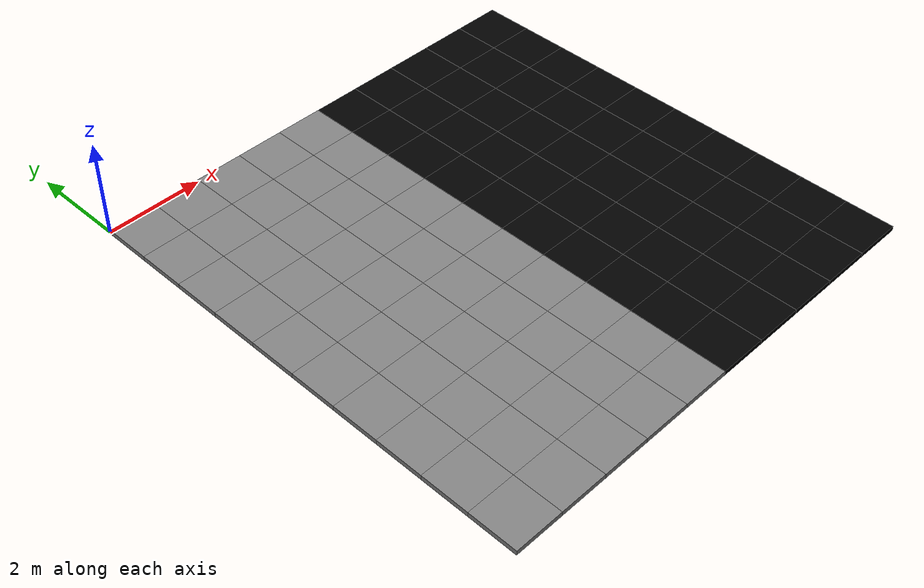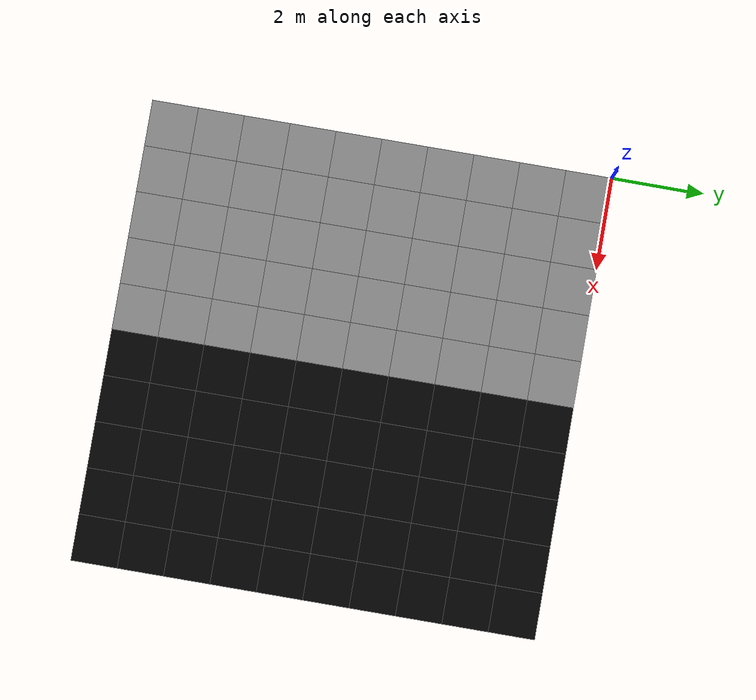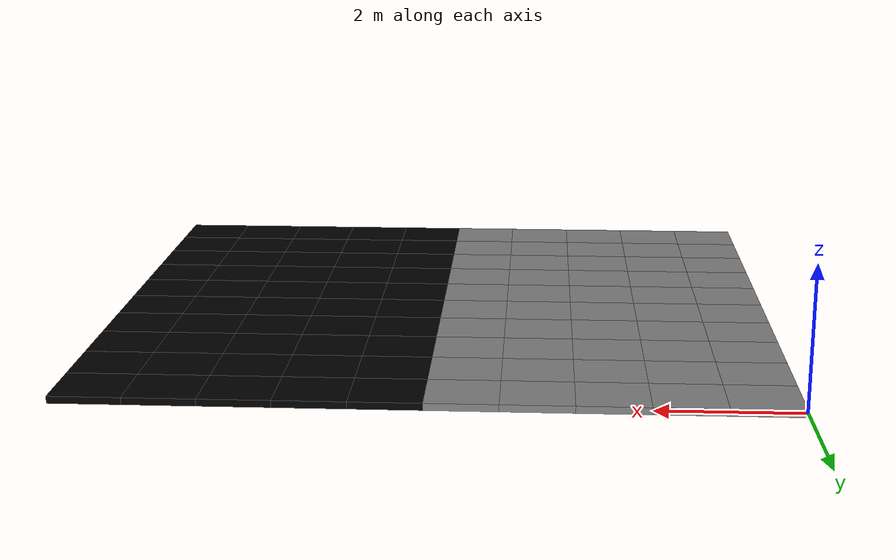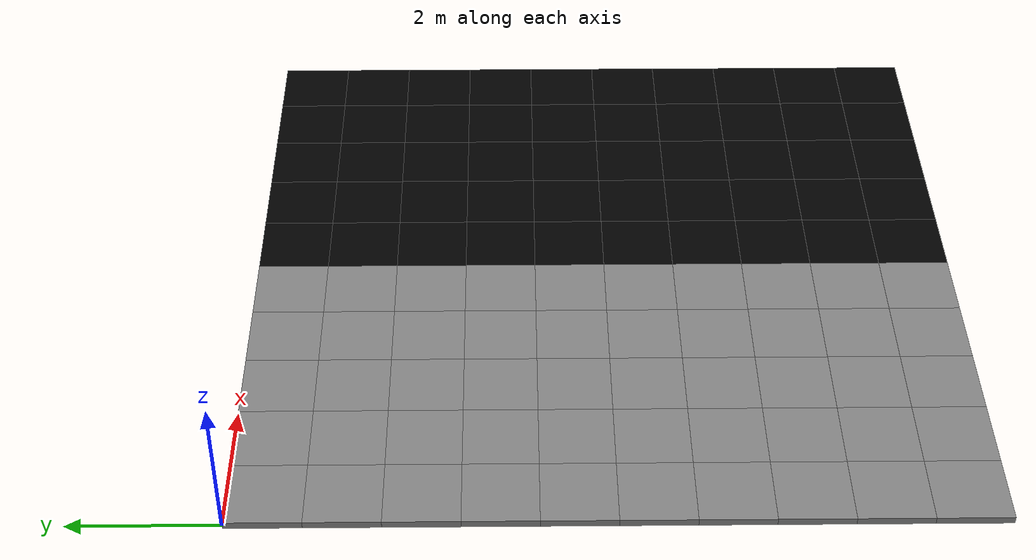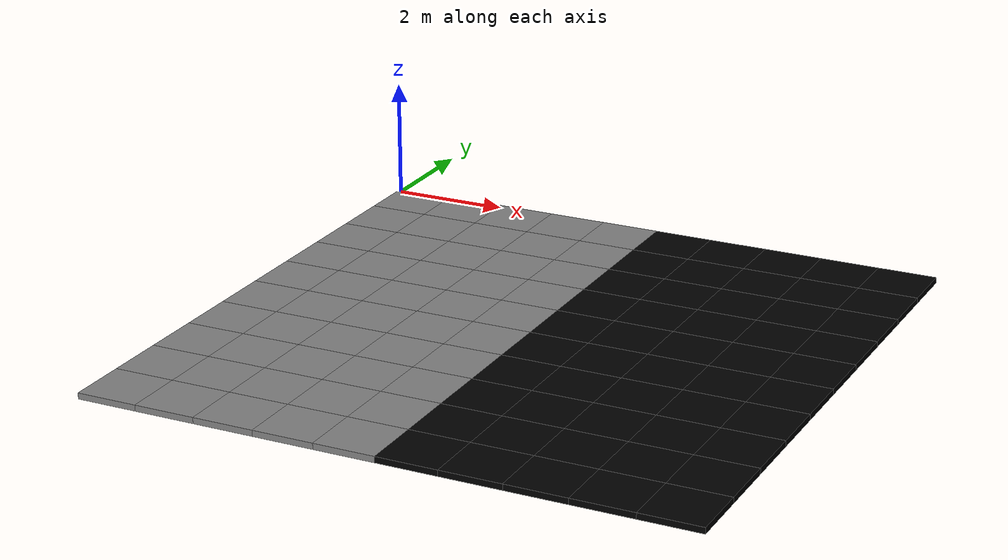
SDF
<sdf version="1.8">
 <world name="binary_discrimination_world">
  <model name="tile_0.5_-9.5">
   <static>true</static>
   <pose>0.5 -9.5 0 0 0 0</pose>
   <link name="link">
    <collision name="collision"><geometry><box><size>1 1 0.1</size></box></geometry></collision>
    <visual name="visual">
     <geometry><box><size>1 1 0.1</size></box></geometry>
     <material><ambient>0.5 0.5 0.5 1</ambient><diffuse>0.5 0.5 0.5 1</diffuse></material>
    </visual>
   </link>
  </model>
  <model name="tile_0.5_-8.5">
   <static>true</static>
   <pose>0.5 -8.5 0 0 0 0</pose>
   <link name="link">
    <collision name="collision"><geometry><box><size>1 1 0.1</size></box></geometry></collision>
    <visual name="visual">
     <geometry><box><size>1 1 0.1</size></box></geometry>
     <material><ambient>0.5 0.5 0.5 1</ambient><diffuse>0.5 0.5 0.5 1</diffuse></material>
    </visual>
   </link>
  </model>
  <model name="tile_0.5_-7.5">
   <static>true</static>
   <pose>0.5 -7.5 0 0 0 0</pose>
   <link name="link">
    <collision name="collision"><geometry><box><size>1 1 0.1</size></box></geometry></collision>
    <visual name="visual">
     <geometry><box><size>1 1 0.1</size></box></geometry>
     <material><ambient>0.5 0.5 0.5 1</ambient><diffuse>0.5 0.5 0.5 1</diffuse></material>
    </visual>
   </link>
  </model>
  <model name="tile_0.5_-6.5">
   <static>true</static>
   <pose>0.5 -6.5 0 0 0 0</pose>
   <link name="link">
    <collision name="collision"><geometry><box><size>1 1 0.1</size></box></geometry></collision>
    <visual name="visual">
     <geometry><box><size>1 1 0.1</size></box></geometry>
     <material><ambient>0.5 0.5 0.5 1</ambient><diffuse>0.5 0.5 0.5 1</diffuse></material>
    </visual>
   </link>
  </model>
  <model name="tile_0.5_-5.5">
   <static>true</static>
   <pose>0.5 -5.5 0 0 0 0</pose>
   <link name="link">
    <collision name="collision"><geometry><box><size>1 1 0.1</size></box></geometry></collision>
    <visual name="visual">
     <geometry><box><size>1 1 0.1</size></box></geometry>
     <material><ambient>0.5 0.5 0.5 1</ambient><diffuse>0.5 0.5 0.5 1</diffuse></material>
    </visual>
   </link>
  </model>
  <model name="tile_0.5_-4.5">
   <static>true</static>
   <pose>0.5 -4.5 0 0 0 0</pose>
   <link name="link">
    <collision name="collision"><geometry><box><size>1 1 0.1</size></box></geometry></collision>
    <visual name="visual">
     <geometry><box><size>1 1 0.1</size></box></geometry>
     <material><ambient>0.5 0.5 0.5 1</ambient><diffuse>0.5 0.5 0.5 1</diffuse></material>
    </visual>
   </link>
  </model>
  <model name="tile_0.5_-3.5">
   <static>true</static>
   <pose>0.5 -3.5 0 0 0 0</pose>
   <link name="link">
    <collision name="collision"><geometry><box><size>1 1 0.1</size></box></geometry></collision>
    <visual name="visual">
     <geometry><box><size>1 1 0.1</size></box></geometry>
     <material><ambient>0.5 0.5 0.5 1</ambient><diffuse>0.5 0.5 0.5 1</diffuse></material>
    </visual>
   </link>
  </model>
  <model name="tile_0.5_-2.5">
   <static>true</static>
   <pose>0.5 -2.5 0 0 0 0</pose>
   <link name="link">
    <collision name="collision"><geometry><box><size>1 1 0.1</size></box></geometry></collision>
    <visual name="visual">
     <geometry><box><size>1 1 0.1</size></box></geometry>
     <material><ambient>0.5 0.5 0.5 1</ambient><diffuse>0.5 0.5 0.5 1</diffuse></material>
    </visual>
   </link>
  </model>
  <model name="tile_0.5_-1.5">
   <static>true</static>
   <pose>0.5 -1.5 0 0 0 0</pose>
   <link name="link">
    <collision name="collision"><geometry><box><size>1 1 0.1</size></box></geometry></collision>
    <visual name="visual">
     <geometry><box><size>1 1 0.1</size></box></geometry>
     <material><ambient>0.5 0.5 0.5 1</ambient><diffuse>0.5 0.5 0.5 1</diffuse></material>
    </visual>
   </link>
  </model>
  <model name="tile_0.5_-0.5">
   <static>true</static>
   <pose>0.5 -0.5 0 0 0 0</pose>
   <link name="link">
    <collision name="collision"><geometry><box><size>1 1 0.1</size></box></geometry></collision>
    <visual name="visual">
     <geometry><box><size>1 1 0.1</size></box></geometry>
     <material><ambient>0.5 0.5 0.5 1</ambient><diffuse>0.5 0.5 0.5 1</diffuse></material>
    </visual>
   </link>
  </model>
  <model name="tile_1.5_-9.5">
   <static>true</static>
   <pose>1.5 -9.5 0 0 0 0</pose>
   <link name="link">
    <collision name="collision"><geometry><box><size>1 1 0.1</size></box></geometry></collision>
    <visual name="visual">
     <geometry><box><size>1 1 0.1</size></box></geometry>
     <material><ambient>0.5 0.5 0.5 1</ambient><diffuse>0.5 0.5 0.5 1</diffuse></material>
    </visual>
   </link>
  </model>
  <model name="tile_1.5_-8.5">
   <static>true</static>
   <pose>1.5 -8.5 0 0 0 0</pose>
   <link name="link">
    <collision name="collision"><geometry><box><size>1 1 0.1</size></box></geometry></collision>
    <visual name="visual">
     <geometry><box><size>1 1 0.1</size></box></geometry>
     <material><ambient>0.5 0.5 0.5 1</ambient><diffuse>0.5 0.5 0.5 1</diffuse></material>
    </visual>
   </link>
  </model>
  <model name="tile_1.5_-7.5">
   <static>true</static>
   <pose>1.5 -7.5 0 0 0 0</pose>
   <link name="link">
    <collision name="collision"><geometry><box><size>1 1 0.1</size></box></geometry></collision>
    <visual name="visual">
     <geometry><box><size>1 1 0.1</size></box></geometry>
     <material><ambient>0.5 0.5 0.5 1</ambient><diffuse>0.5 0.5 0.5 1</diffuse></material>
    </visual>
   </link>
  </model>
  <model name="tile_1.5_-6.5">
   <static>true</static>
   <pose>1.5 -6.5 0 0 0 0</pose>
   <link name="link">
    <collision name="collision"><geometry><box><size>1 1 0.1</size></box></geometry></collision>
    <visual name="visual">
     <geometry><box><size>1 1 0.1</size></box></geometry>
     <material><ambient>0.5 0.5 0.5 1</ambient><diffuse>0.5 0.5 0.5 1</diffuse></material>
    </visual>
   </link>
  </model>
  <model name="tile_1.5_-5.5">
   <static>true</static>
   <pose>1.5 -5.5 0 0 0 0</pose>
   <link name="link">
    <collision name="collision"><geometry><box><size>1 1 0.1</size></box></geometry></collision>
    <visual name="visual">
     <geometry><box><size>1 1 0.1</size></box></geometry>
     <material><ambient>0.5 0.5 0.5 1</ambient><diffuse>0.5 0.5 0.5 1</diffuse></material>
    </visual>
   </link>
  </model>
  <model name="tile_1.5_-4.5">
   <static>true</static>
   <pose>1.5 -4.5 0 0 0 0</pose>
   <link name="link">
    <collision name="collision"><geometry><box><size>1 1 0.1</size></box></geometry></collision>
    <visual name="visual">
     <geometry><box><size>1 1 0.1</size></box></geometry>
     <material><ambient>0.5 0.5 0.5 1</ambient><diffuse>0.5 0.5 0.5 1</diffuse></material>
    </visual>
   </link>
  </model>
  <model name="tile_1.5_-3.5">
   <static>true</static>
   <pose>1.5 -3.5 0 0 0 0</pose>
   <link name="link">
    <collision name="collision"><geometry><box><size>1 1 0.1</size></box></geometry></collision>
    <visual name="visual">
     <geometry><box><size>1 1 0.1</size></box></geometry>
     <material><ambient>0.5 0.5 0.5 1</ambient><diffuse>0.5 0.5 0.5 1</diffuse></material>
    </visual>
   </link>
  </model>
  <model name="tile_1.5_-2.5">
   <static>true</static>
   <pose>1.5 -2.5 0 0 0 0</pose>
   <link name="link">
    <collision name="collision"><geometry><box><size>1 1 0.1</size></box></geometry></collision>
    <visual name="visual">
     <geometry><box><size>1 1 0.1</size></box></geometry>
     <material><ambient>0.5 0.5 0.5 1</ambient><diffuse>0.5 0.5 0.5 1</diffuse></material>
    </visual>
   </link>
  </model>
  <model name="tile_1.5_-1.5">
   <static>true</static>
   <pose>1.5 -1.5 0 0 0 0</pose>
   <link name="link">
    <collision name="collision"><geometry><box><size>1 1 0.1</size></box></geometry></collision>
    <visual name="visual">
     <geometry><box><size>1 1 0.1</size></box></geometry>
     <material><ambient>0.5 0.5 0.5 1</ambient><diffuse>0.5 0.5 0.5 1</diffuse></material>
    </visual>
   </link>
  </model>
  <model name="tile_1.5_-0.5">
   <static>true</static>
   <pose>1.5 -0.5 0 0 0 0</pose>
   <link name="link">
    <collision name="collision"><geometry><box><size>1 1 0.1</size></box></geometry></collision>
    <visual name="visual">
     <geometry><box><size>1 1 0.1</size></box></geometry>
     <material><ambient>0.5 0.5 0.5 1</ambient><diffuse>0.5 0.5 0.5 1</diffuse></material>
    </visual>
   </link>
  </model>
  <model name="tile_2.5_-9.5">
   <static>true</static>
   <pose>2.5 -9.5 0 0 0 0</pose>
   <link name="link">
    <collision name="collision"><geometry><box><size>1 1 0.1</size></box></geometry></collision>
    <visual name="visual">
     <geometry><box><size>1 1 0.1</size></box></geometry>
     <material><ambient>0.5 0.5 0.5 1</ambient><diffuse>0.5 0.5 0.5 1</diffuse></material>
    </visual>
   </link>
  </model>
  <model name="tile_2.5_-8.5">
   <static>true</static>
   <pose>2.5 -8.5 0 0 0 0</pose>
   <link name="link">
    <collision name="collision"><geometry><box><size>1 1 0.1</size></box></geometry></collision>
    <visual name="visual">
     <geometry><box><size>1 1 0.1</size></box></geometry>
     <material><ambient>0.5 0.5 0.5 1</ambient><diffuse>0.5 0.5 0.5 1</diffuse></material>
    </visual>
   </link>
  </model>
  <model name="tile_2.5_-7.5">
   <static>true</static>
   <pose>2.5 -7.5 0 0 0 0</pose>
   <link name="link">
    <collision name="collision"><geometry><box><size>1 1 0.1</size></box></geometry></collision>
    <visual name="visual">
     <geometry><box><size>1 1 0.1</size></box></geometry>
     <material><ambient>0.5 0.5 0.5 1</ambient><diffuse>0.5 0.5 0.5 1</diffuse></material>
    </visual>
   </link>
  </model>
  <model name="tile_2.5_-6.5">
   <static>true</static>
   <pose>2.5 -6.5 0 0 0 0</pose>
   <link name="link">
    <collision name="collision"><geometry><box><size>1 1 0.1</size></box></geometry></collision>
    <visual name="visual">
     <geometry><box><size>1 1 0.1</size></box></geometry>
     <material><ambient>0.5 0.5 0.5 1</ambient><diffuse>0.5 0.5 0.5 1</diffuse></material>
    </visual>
   </link>
  </model>
  <model name="tile_2.5_-5.5">
   <static>true</static>
   <pose>2.5 -5.5 0 0 0 0</pose>
   <link name="link">
    <collision name="collision"><geometry><box><size>1 1 0.1</size></box></geometry></collision>
    <visual name="visual">
     <geometry><box><size>1 1 0.1</size></box></geometry>
     <material><ambient>0.5 0.5 0.5 1</ambient><diffuse>0.5 0.5 0.5 1</diffuse></material>
    </visual>
   </link>
  </model>
  <model name="tile_2.5_-4.5">
   <static>true</static>
   <pose>2.5 -4.5 0 0 0 0</pose>
   <link name="link">
    <collision name="collision"><geometry><box><size>1 1 0.1</size></box></geometry></collision>
    <visual name="visual">
     <geometry><box><size>1 1 0.1</size></box></geometry>
     <material><ambient>0.5 0.5 0.5 1</ambient><diffuse>0.5 0.5 0.5 1</diffuse></material>
    </visual>
   </link>
  </model>
  <model name="tile_2.5_-3.5">
   <static>true</static>
   <pose>2.5 -3.5 0 0 0 0</pose>
   <link name="link">
    <collision name="collision"><geometry><box><size>1 1 0.1</size></box></geometry></collision>
    <visual name="visual">
     <geometry><box><size>1 1 0.1</size></box></geometry>
     <material><ambient>0.5 0.5 0.5 1</ambient><diffuse>0.5 0.5 0.5 1</diffuse></material>
    </visual>
   </link>
  </model>
  <model name="tile_2.5_-2.5">
   <static>true</static>
   <pose>2.5 -2.5 0 0 0 0</pose>
   <link name="link">
    <collision name="collision"><geometry><box><size>1 1 0.1</size></box></geometry></collision>
    <visual name="visual">
     <geometry><box><size>1 1 0.1</size></box></geometry>
     <material><ambient>0.5 0.5 0.5 1</ambient><diffuse>0.5 0.5 0.5 1</diffuse></material>
    </visual>
   </link>
  </model>
  <model name="tile_2.5_-1.5">
   <static>true</static>
   <pose>2.5 -1.5 0 0 0 0</pose>
   <link name="link">
    <collision name="collision"><geometry><box><size>1 1 0.1</size></box></geometry></collision>
    <visual name="visual">
     <geometry><box><size>1 1 0.1</size></box></geometry>
     <material><ambient>0.5 0.5 0.5 1</ambient><diffuse>0.5 0.5 0.5 1</diffuse></material>
    </visual>
   </link>
  </model>
  <model name="tile_2.5_-0.5">
   <static>true</static>
   <pose>2.5 -0.5 0 0 0 0</pose>
   <link name="link">
    <collision name="collision"><geometry><box><size>1 1 0.1</size></box></geometry></collision>
    <visual name="visual">
     <geometry><box><size>1 1 0.1</size></box></geometry>
     <material><ambient>0.5 0.5 0.5 1</ambient><diffuse>0.5 0.5 0.5 1</diffuse></material>
    </visual>
   </link>
  </model>
  <model name="tile_3.5_-9.5">
   <static>true</static>
   <pose>3.5 -9.5 0 0 0 0</pose>
   <link name="link">
    <collision name="collision"><geometry><box><size>1 1 0.1</size></box></geometry></collision>
    <visual name="visual">
     <geometry><box><size>1 1 0.1</size></box></geometry>
     <material><ambient>0.5 0.5 0.5 1</ambient><diffuse>0.5 0.5 0.5 1</diffuse></material>
    </visual>
   </link>
  </model>
  <model name="tile_3.5_-8.5">
   <static>true</static>
   <pose>3.5 -8.5 0 0 0 0</pose>
   <link name="link">
    <collision name="collision"><geometry><box><size>1 1 0.1</size></box></geometry></collision>
    <visual name="visual">
     <geometry><box><size>1 1 0.1</size></box></geometry>
     <material><ambient>0.5 0.5 0.5 1</ambient><diffuse>0.5 0.5 0.5 1</diffuse></material>
    </visual>
   </link>
  </model>
  <model name="tile_3.5_-7.5">
   <static>true</static>
   <pose>3.5 -7.5 0 0 0 0</pose>
   <link name="link">
    <collision name="collision"><geometry><box><size>1 1 0.1</size></box></geometry></collision>
    <visual name="visual">
     <geometry><box><size>1 1 0.1</size></box></geometry>
     <material><ambient>0.5 0.5 0.5 1</ambient><diffuse>0.5 0.5 0.5 1</diffuse></material>
    </visual>
   </link>
  </model>
  <model name="tile_3.5_-6.5">
   <static>true</static>
   <pose>3.5 -6.5 0 0 0 0</pose>
   <link name="link">
    <collision name="collision"><geometry><box><size>1 1 0.1</size></box></geometry></collision>
    <visual name="visual">
     <geometry><box><size>1 1 0.1</size></box></geometry>
     <material><ambient>0.5 0.5 0.5 1</ambient><diffuse>0.5 0.5 0.5 1</diffuse></material>
    </visual>
   </link>
  </model>
  <model name="tile_3.5_-5.5">
   <static>true</static>
   <pose>3.5 -5.5 0 0 0 0</pose>
   <link name="link">
    <collision name="collision"><geometry><box><size>1 1 0.1</size></box></geometry></collision>
    <visual name="visual">
     <geometry><box><size>1 1 0.1</size></box></geometry>
     <material><ambient>0.5 0.5 0.5 1</ambient><diffuse>0.5 0.5 0.5 1</diffuse></material>
    </visual>
   </link>
  </model>
  <model name="tile_3.5_-4.5">
   <static>true</static>
   <pose>3.5 -4.5 0 0 0 0</pose>
   <link name="link">
    <collision name="collision"><geometry><box><size>1 1 0.1</size></box></geometry></collision>
    <visual name="visual">
     <geometry><box><size>1 1 0.1</size></box></geometry>
     <material><ambient>0.5 0.5 0.5 1</ambient><diffuse>0.5 0.5 0.5 1</diffuse></material>
    </visual>
   </link>
  </model>
  <model name="tile_3.5_-3.5">
   <static>true</static>
   <pose>3.5 -3.5 0 0 0 0</pose>
   <link name="link">
    <collision name="collision"><geometry><box><size>1 1 0.1</size></box></geometry></collision>
    <visual name="visual">
     <geometry><box><size>1 1 0.1</size></box></geometry>
     <material><ambient>0.5 0.5 0.5 1</ambient><diffuse>0.5 0.5 0.5 1</diffuse></material>
    </visual>
   </link>
  </model>
  <model name="tile_3.5_-2.5">
   <static>true</static>
   <pose>3.5 -2.5 0 0 0 0</pose>
   <link name="link">
    <collision name="collision"><geometry><box><size>1 1 0.1</size></box></geometry></collision>
    <visual name="visual">
     <geometry><box><size>1 1 0.1</size></box></geometry>
     <material><ambient>0.5 0.5 0.5 1</ambient><diffuse>0.5 0.5 0.5 1</diffuse></material>
    </visual>
   </link>
  </model>
  <model name="tile_3.5_-1.5">
   <static>true</static>
   <pose>3.5 -1.5 0 0 0 0</pose>
   <link name="link">
    <collision name="collision"><geometry><box><size>1 1 0.1</size></box></geometry></collision>
    <visual name="visual">
     <geometry><box><size>1 1 0.1</size></box></geometry>
     <material><ambient>0.5 0.5 0.5 1</ambient><diffuse>0.5 0.5 0.5 1</diffuse></material>
    </visual>
   </link>
  </model>
  <model name="tile_3.5_-0.5">
   <static>true</static>
   <pose>3.5 -0.5 0 0 0 0</pose>
   <link name="link">
    <collision name="collision"><geometry><box><size>1 1 0.1</size></box></geometry></collision>
    <visual name="visual">
     <geometry><box><size>1 1 0.1</size></box></geometry>
     <material><ambient>0.5 0.5 0.5 1</ambient><diffuse>0.5 0.5 0.5 1</diffuse></material>
    </visual>
   </link>
  </model>
  <model name="tile_4.5_-9.5">
   <static>true</static>
   <pose>4.5 -9.5 0 0 0 0</pose>
   <link name="link">
    <collision name="collision"><geometry><box><size>1 1 0.1</size></box></geometry></collision>
    <visual name="visual">
     <geometry><box><size>1 1 0.1</size></box></geometry>
     <material><ambient>0.5 0.5 0.5 1</ambient><diffuse>0.5 0.5 0.5 1</diffuse></material>
    </visual>
   </link>
  </model>
  <model name="tile_4.5_-8.5">
   <static>true</static>
   <pose>4.5 -8.5 0 0 0 0</pose>
   <link name="link">
    <collision name="collision"><geometry><box><size>1 1 0.1</size></box></geometry></collision>
    <visual name="visual">
     <geometry><box><size>1 1 0.1</size></box></geometry>
     <material><ambient>0.5 0.5 0.5 1</ambient><diffuse>0.5 0.5 0.5 1</diffuse></material>
    </visual>
   </link>
  </model>
  <model name="tile_4.5_-7.5">
   <static>true</static>
   <pose>4.5 -7.5 0 0 0 0</pose>
   <link name="link">
    <collision name="collision"><geometry><box><size>1 1 0.1</size></box></geometry></collision>
    <visual name="visual">
     <geometry><box><size>1 1 0.1</size></box></geometry>
     <material><ambient>0.5 0.5 0.5 1</ambient><diffuse>0.5 0.5 0.5 1</diffuse></material>
    </visual>
   </link>
  </model>
  <model name="tile_4.5_-6.5">
   <static>true</static>
   <pose>4.5 -6.5 0 0 0 0</pose>
   <link name="link">
    <collision name="collision"><geometry><box><size>1 1 0.1</size></box></geometry></collision>
    <visual name="visual">
     <geometry><box><size>1 1 0.1</size></box></geometry>
     <material><ambient>0.5 0.5 0.5 1</ambient><diffuse>0.5 0.5 0.5 1</diffuse></material>
    </visual>
   </link>
  </model>
  <model name="tile_4.5_-5.5">
   <static>true</static>
   <pose>4.5 -5.5 0 0 0 0</pose>
   <link name="link">
    <collision name="collision"><geometry><box><size>1 1 0.1</size></box></geometry></collision>
    <visual name="visual">
     <geometry><box><size>1 1 0.1</size></box></geometry>
     <material><ambient>0.5 0.5 0.5 1</ambient><diffuse>0.5 0.5 0.5 1</diffuse></material>
    </visual>
   </link>
  </model>
  <model name="tile_4.5_-4.5">
   <static>true</static>
   <pose>4.5 -4.5 0 0 0 0</pose>
   <link name="link">
    <collision name="collision"><geometry><box><size>1 1 0.1</size></box></geometry></collision>
    <visual name="visual">
     <geometry><box><size>1 1 0.1</size></box></geometry>
     <material><ambient>0.5 0.5 0.5 1</ambient><diffuse>0.5 0.5 0.5 1</diffuse></material>
    </visual>
   </link>
  </model>
  <model name="tile_4.5_-3.5">
   <static>true</static>
   <pose>4.5 -3.5 0 0 0 0</pose>
   <link name="link">
    <collision name="collision"><geometry><box><size>1 1 0.1</size></box></geometry></collision>
    <visual name="visual">
     <geometry><box><size>1 1 0.1</size></box></geometry>
     <material><ambient>0.5 0.5 0.5 1</ambient><diffuse>0.5 0.5 0.5 1</diffuse></material>
    </visual>
   </link>
  </model>
  <model name="tile_4.5_-2.5">
   <static>true</static>
   <pose>4.5 -2.5 0 0 0 0</pose>
   <link name="link">
    <collision name="collision"><geometry><box><size>1 1 0.1</size></box></geometry></collision>
    <visual name="visual">
     <geometry><box><size>1 1 0.1</size></box></geometry>
     <material><ambient>0.5 0.5 0.5 1</ambient><diffuse>0.5 0.5 0.5 1</diffuse></material>
    </visual>
   </link>
  </model>
  <model name="tile_4.5_-1.5">
   <static>true</static>
   <pose>4.5 -1.5 0 0 0 0</pose>
   <link name="link">
    <collision name="collision"><geometry><box><size>1 1 0.1</size></box></geometry></collision>
    <visual name="visual">
     <geometry><box><size>1 1 0.1</size></box></geometry>
     <material><ambient>0.5 0.5 0.5 1</ambient><diffuse>0.5 0.5 0.5 1</diffuse></material>
    </visual>
   </link>
  </model>
  <model name="tile_4.5_-0.5">
   <static>true</static>
   <pose>4.5 -0.5 0 0 0 0</pose>
   <link name="link">
    <collision name="collision"><geometry><box><size>1 1 0.1</size></box></geometry></collision>
    <visual name="visual">
     <geometry><box><size>1 1 0.1</size></box></geometry>
     <material><ambient>0.5 0.5 0.5 1</ambient><diffuse>0.5 0.5 0.5 1</diffuse></material>
    </visual>
   </link>
  </model>
  <model name="tile_5.5_-9.5">
   <static>true</static>
   <pose>5.5 -9.5 0 0 0 0</pose>
   <link name="link">
    <collision name="collision"><geometry><box><size>1 1 0.1</size></box></geometry></collision>
    <visual name="visual">
     <geometry><box><size>1 1 0.1</size></box></geometry>
     <material><ambient>0 0 0 1</ambient><diffuse>0 0 0 1</diffuse></material>
    </visual>
   </link>
  </model>
  <model name="tile_5.5_-8.5">
   <static>true</static>
   <pose>5.5 -8.5 0 0 0 0</pose>
   <link name="link">
    <collision name="collision"><geometry><box><size>1 1 0.1</size></box></geometry></collision>
    <visual name="visual">
     <geometry><box><size>1 1 0.1</size></box></geometry>
     <material><ambient>0 0 0 1</ambient><diffuse>0 0 0 1</diffuse></material>
    </visual>
   </link>
  </model>
  <model name="tile_5.5_-7.5">
   <static>true</static>
   <pose>5.5 -7.5 0 0 0 0</pose>
   <link name="link">
    <collision name="collision"><geometry><box><size>1 1 0.1</size></box></geometry></collision>
    <visual name="visual">
     <geometry><box><size>1 1 0.1</size></box></geometry>
     <material><ambient>0 0 0 1</ambient><diffuse>0 0 0 1</diffuse></material>
    </visual>
   </link>
  </model>
  <model name="tile_5.5_-6.5">
   <static>true</static>
   <pose>5.5 -6.5 0 0 0 0</pose>
   <link name="link">
    <collision name="collision"><geometry><box><size>1 1 0.1</size></box></geometry></collision>
    <visual name="visual">
     <geometry><box><size>1 1 0.1</size></box></geometry>
     <material><ambient>0 0 0 1</ambient><diffuse>0 0 0 1</diffuse></material>
    </visual>
   </link>
  </model>
  <model name="tile_5.5_-5.5">
   <static>true</static>
   <pose>5.5 -5.5 0 0 0 0</pose>
   <link name="link">
    <collision name="collision"><geometry><box><size>1 1 0.1</size></box></geometry></collision>
    <visual name="visual">
     <geometry><box><size>1 1 0.1</size></box></geometry>
     <material><ambient>0 0 0 1</ambient><diffuse>0 0 0 1</diffuse></material>
    </visual>
   </link>
  </model>
  <model name="tile_5.5_-4.5">
   <static>true</static>
   <pose>5.5 -4.5 0 0 0 0</pose>
   <link name="link">
    <collision name="collision"><geometry><box><size>1 1 0.1</size></box></geometry></collision>
    <visual name="visual">
     <geometry><box><size>1 1 0.1</size></box></geometry>
     <material><ambient>0 0 0 1</ambient><diffuse>0 0 0 1</diffuse></material>
    </visual>
   </link>
  </model>
  <model name="tile_5.5_-3.5">
   <static>true</static>
   <pose>5.5 -3.5 0 0 0 0</pose>
   <link name="link">
    <collision name="collision"><geometry><box><size>1 1 0.1</size></box></geometry></collision>
    <visual name="visual">
     <geometry><box><size>1 1 0.1</size></box></geometry>
     <material><ambient>0 0 0 1</ambient><diffuse>0 0 0 1</diffuse></material>
    </visual>
   </link>
  </model>
  <model name="tile_5.5_-2.5">
   <static>true</static>
   <pose>5.5 -2.5 0 0 0 0</pose>
   <link name="link">
    <collision name="collision"><geometry><box><size>1 1 0.1</size></box></geometry></collision>
    <visual name="visual">
     <geometry><box><size>1 1 0.1</size></box></geometry>
     <material><ambient>0 0 0 1</ambient><diffuse>0 0 0 1</diffuse></material>
    </visual>
   </link>
  </model>
  <model name="tile_5.5_-1.5">
   <static>true</static>
   <pose>5.5 -1.5 0 0 0 0</pose>
   <link name="link">
    <collision name="collision"><geometry><box><size>1 1 0.1</size></box></geometry></collision>
    <visual name="visual">
     <geometry><box><size>1 1 0.1</size></box></geometry>
     <material><ambient>0 0 0 1</ambient><diffuse>0 0 0 1</diffuse></material>
    </visual>
   </link>
  </model>
  <model name="tile_5.5_-0.5">
   <static>true</static>
   <pose>5.5 -0.5 0 0 0 0</pose>
   <link name="link">
    <collision name="collision"><geometry><box><size>1 1 0.1</size></box></geometry></collision>
    <visual name="visual">
     <geometry><box><size>1 1 0.1</size></box></geometry>
     <material><ambient>0 0 0 1</ambient><diffuse>0 0 0 1</diffuse></material>
    </visual>
   </link>
  </model>
  <model name="tile_6.5_-9.5">
   <static>true</static>
   <pose>6.5 -9.5 0 0 0 0</pose>
   <link name="link">
    <collision name="collision"><geometry><box><size>1 1 0.1</size></box></geometry></collision>
    <visual name="visual">
     <geometry><box><size>1 1 0.1</size></box></geometry>
     <material><ambient>0 0 0 1</ambient><diffuse>0 0 0 1</diffuse></material>
    </visual>
   </link>
  </model>
  <model name="tile_6.5_-8.5">
   <static>true</static>
   <pose>6.5 -8.5 0 0 0 0</pose>
   <link name="link">
    <collision name="collision"><geometry><box><size>1 1 0.1</size></box></geometry></collision>
    <visual name="visual">
     <geometry><box><size>1 1 0.1</size></box></geometry>
     <material><ambient>0 0 0 1</ambient><diffuse>0 0 0 1</diffuse></material>
    </visual>
   </link>
  </model>
  <model name="tile_6.5_-7.5">
   <static>true</static>
   <pose>6.5 -7.5 0 0 0 0</pose>
   <link name="link">
    <collision name="collision"><geometry><box><size>1 1 0.1</size></box></geometry></collision>
    <visual name="visual">
     <geometry><box><size>1 1 0.1</size></box></geometry>
     <material><ambient>0 0 0 1</ambient><diffuse>0 0 0 1</diffuse></material>
    </visual>
   </link>
  </model>
  <model name="tile_6.5_-6.5">
   <static>true</static>
   <pose>6.5 -6.5 0 0 0 0</pose>
   <link name="link">
    <collision name="collision"><geometry><box><size>1 1 0.1</size></box></geometry></collision>
    <visual name="visual">
     <geometry><box><size>1 1 0.1</size></box></geometry>
     <material><ambient>0 0 0 1</ambient><diffuse>0 0 0 1</diffuse></material>
    </visual>
   </link>
  </model>
  <model name="tile_6.5_-5.5">
   <static>true</static>
   <pose>6.5 -5.5 0 0 0 0</pose>
   <link name="link">
    <collision name="collision"><geometry><box><size>1 1 0.1</size></box></geometry></collision>
    <visual name="visual">
     <geometry><box><size>1 1 0.1</size></box></geometry>
     <material><ambient>0 0 0 1</ambient><diffuse>0 0 0 1</diffuse></material>
    </visual>
   </link>
  </model>
  <model name="tile_6.5_-4.5">
   <static>true</static>
   <pose>6.5 -4.5 0 0 0 0</pose>
   <link name="link">
    <collision name="collision"><geometry><box><size>1 1 0.1</size></box></geometry></collision>
    <visual name="visual">
     <geometry><box><size>1 1 0.1</size></box></geometry>
     <material><ambient>0 0 0 1</ambient><diffuse>0 0 0 1</diffuse></material>
    </visual>
   </link>
  </model>
  <model name="tile_6.5_-3.5">
   <static>true</static>
   <pose>6.5 -3.5 0 0 0 0</pose>
   <link name="link">
    <collision name="collision"><geometry><box><size>1 1 0.1</size></box></geometry></collision>
    <visual name="visual">
     <geometry><box><size>1 1 0.1</size></box></geometry>
     <material><ambient>0 0 0 1</ambient><diffuse>0 0 0 1</diffuse></material>
    </visual>
   </link>
  </model>
  <model name="tile_6.5_-2.5">
   <static>true</static>
   <pose>6.5 -2.5 0 0 0 0</pose>
   <link name="link">
    <collision name="collision"><geometry><box><size>1 1 0.1</size></box></geometry></collision>
    <visual name="visual">
     <geometry><box><size>1 1 0.1</size></box></geometry>
     <material><ambient>0 0 0 1</ambient><diffuse>0 0 0 1</diffuse></material>
    </visual>
   </link>
  </model>
  <model name="tile_6.5_-1.5">
   <static>true</static>
   <pose>6.5 -1.5 0 0 0 0</pose>
   <link name="link">
    <collision name="collision"><geometry><box><size>1 1 0.1</size></box></geometry></collision>
    <visual name="visual">
     <geometry><box><size>1 1 0.1</size></box></geometry>
     <material><ambient>0 0 0 1</ambient><diffuse>0 0 0 1</diffuse></material>
    </visual>
   </link>
  </model>
  <model name="tile_6.5_-0.5">
   <static>true</static>
   <pose>6.5 -0.5 0 0 0 0</pose>
   <link name="link">
    <collision name="collision"><geometry><box><size>1 1 0.1</size></box></geometry></collision>
    <visual name="visual">
     <geometry><box><size>1 1 0.1</size></box></geometry>
     <material><ambient>0 0 0 1</ambient><diffuse>0 0 0 1</diffuse></material>
    </visual>
   </link>
  </model>
  <model name="tile_7.5_-9.5">
   <static>true</static>
   <pose>7.5 -9.5 0 0 0 0</pose>
   <link name="link">
    <collision name="collision"><geometry><box><size>1 1 0.1</size></box></geometry></collision>
    <visual name="visual">
     <geometry><box><size>1 1 0.1</size></box></geometry>
     <material><ambient>0 0 0 1</ambient><diffuse>0 0 0 1</diffuse></material>
    </visual>
   </link>
  </model>
  <model name="tile_7.5_-8.5">
   <static>true</static>
   <pose>7.5 -8.5 0 0 0 0</pose>
   <link name="link">
    <collision name="collision"><geometry><box><size>1 1 0.1</size></box></geometry></collision>
    <visual name="visual">
     <geometry><box><size>1 1 0.1</size></box></geometry>
     <material><ambient>0 0 0 1</ambient><diffuse>0 0 0 1</diffuse></material>
    </visual>
   </link>
  </model>
  <model name="tile_7.5_-7.5">
   <static>true</static>
   <pose>7.5 -7.5 0 0 0 0</pose>
   <link name="link">
    <collision name="collision"><geometry><box><size>1 1 0.1</size></box></geometry></collision>
    <visual name="visual">
     <geometry><box><size>1 1 0.1</size></box></geometry>
     <material><ambient>0 0 0 1</ambient><diffuse>0 0 0 1</diffuse></material>
    </visual>
   </link>
  </model>
  <model name="tile_7.5_-6.5">
   <static>true</static>
   <pose>7.5 -6.5 0 0 0 0</pose>
   <link name="link">
    <collision name="collision"><geometry><box><size>1 1 0.1</size></box></geometry></collision>
    <visual name="visual">
     <geometry><box><size>1 1 0.1</size></box></geometry>
     <material><ambient>0 0 0 1</ambient><diffuse>0 0 0 1</diffuse></material>
    </visual>
   </link>
  </model>
  <model name="tile_7.5_-5.5">
   <static>true</static>
   <pose>7.5 -5.5 0 0 0 0</pose>
   <link name="link">
    <collision name="collision"><geometry><box><size>1 1 0.1</size></box></geometry></collision>
    <visual name="visual">
     <geometry><box><size>1 1 0.1</size></box></geometry>
     <material><ambient>0 0 0 1</ambient><diffuse>0 0 0 1</diffuse></material>
    </visual>
   </link>
  </model>
  <model name="tile_7.5_-4.5">
   <static>true</static>
   <pose>7.5 -4.5 0 0 0 0</pose>
   <link name="link">
    <collision name="collision"><geometry><box><size>1 1 0.1</size></box></geometry></collision>
    <visual name="visual">
     <geometry><box><size>1 1 0.1</size></box></geometry>
     <material><ambient>0 0 0 1</ambient><diffuse>0 0 0 1</diffuse></material>
    </visual>
   </link>
  </model>
  <model name="tile_7.5_-3.5">
   <static>true</static>
   <pose>7.5 -3.5 0 0 0 0</pose>
   <link name="link">
    <collision name="collision"><geometry><box><size>1 1 0.1</size></box></geometry></collision>
    <visual name="visual">
     <geometry><box><size>1 1 0.1</size></box></geometry>
     <material><ambient>0 0 0 1</ambient><diffuse>0 0 0 1</diffuse></material>
    </visual>
   </link>
  </model>
  <model name="tile_7.5_-2.5">
   <static>true</static>
   <pose>7.5 -2.5 0 0 0 0</pose>
   <link name="link">
    <collision name="collision"><geometry><box><size>1 1 0.1</size></box></geometry></collision>
    <visual name="visual">
     <geometry><box><size>1 1 0.1</size></box></geometry>
     <material><ambient>0 0 0 1</ambient><diffuse>0 0 0 1</diffuse></material>
    </visual>
   </link>
  </model>
  <model name="tile_7.5_-1.5">
   <static>true</static>
   <pose>7.5 -1.5 0 0 0 0</pose>
   <link name="link">
    <collision name="collision"><geometry><box><size>1 1 0.1</size></box></geometry></collision>
    <visual name="visual">
     <geometry><box><size>1 1 0.1</size></box></geometry>
     <material><ambient>0 0 0 1</ambient><diffuse>0 0 0 1</diffuse></material>
    </visual>
   </link>
  </model>
  <model name="tile_7.5_-0.5">
   <static>true</static>
   <pose>7.5 -0.5 0 0 0 0</pose>
   <link name="link">
    <collision name="collision"><geometry><box><size>1 1 0.1</size></box></geometry></collision>
    <visual name="visual">
     <geometry><box><size>1 1 0.1</size></box></geometry>
     <material><ambient>0 0 0 1</ambient><diffuse>0 0 0 1</diffuse></material>
    </visual>
   </link>
  </model>
  <model name="tile_8.5_-9.5">
   <static>true</static>
   <pose>8.5 -9.5 0 0 0 0</pose>
   <link name="link">
    <collision name="collision"><geometry><box><size>1 1 0.1</size></box></geometry></collision>
    <visual name="visual">
     <geometry><box><size>1 1 0.1</size></box></geometry>
     <material><ambient>0 0 0 1</ambient><diffuse>0 0 0 1</diffuse></material>
    </visual>
   </link>
  </model>
  <model name="tile_8.5_-8.5">
   <static>true</static>
   <pose>8.5 -8.5 0 0 0 0</pose>
   <link name="link">
    <collision name="collision"><geometry><box><size>1 1 0.1</size></box></geometry></collision>
    <visual name="visual">
     <geometry><box><size>1 1 0.1</size></box></geometry>
     <material><ambient>0 0 0 1</ambient><diffuse>0 0 0 1</diffuse></material>
    </visual>
   </link>
  </model>
  <model name="tile_8.5_-7.5">
   <static>true</static>
   <pose>8.5 -7.5 0 0 0 0</pose>
   <link name="link">
    <collision name="collision"><geometry><box><size>1 1 0.1</size></box></geometry></collision>
    <visual name="visual">
     <geometry><box><size>1 1 0.1</size></box></geometry>
     <material><ambient>0 0 0 1</ambient><diffuse>0 0 0 1</diffuse></material>
    </visual>
   </link>
  </model>
  <model name="tile_8.5_-6.5">
   <static>true</static>
   <pose>8.5 -6.5 0 0 0 0</pose>
   <link name="link">
    <collision name="collision"><geometry><box><size>1 1 0.1</size></box></geometry></collision>
    <visual name="visual">
     <geometry><box><size>1 1 0.1</size></box></geometry>
     <material><ambient>0 0 0 1</ambient><diffuse>0 0 0 1</diffuse></material>
    </visual>
   </link>
  </model>
  <model name="tile_8.5_-5.5">
   <static>true</static>
   <pose>8.5 -5.5 0 0 0 0</pose>
   <link name="link">
    <collision name="collision"><geometry><box><size>1 1 0.1</size></box></geometry></collision>
    <visual name="visual">
     <geometry><box><size>1 1 0.1</size></box></geometry>
     <material><ambient>0 0 0 1</ambient><diffuse>0 0 0 1</diffuse></material>
    </visual>
   </link>
  </model>
  <model name="tile_8.5_-4.5">
   <static>true</static>
   <pose>8.5 -4.5 0 0 0 0</pose>
   <link name="link">
    <collision name="collision"><geometry><box><size>1 1 0.1</size></box></geometry></collision>
    <visual name="visual">
     <geometry><box><size>1 1 0.1</size></box></geometry>
     <material><ambient>0 0 0 1</ambient><diffuse>0 0 0 1</diffuse></material>
    </visual>
   </link>
  </model>
  <model name="tile_8.5_-3.5">
   <static>true</static>
   <pose>8.5 -3.5 0 0 0 0</pose>
   <link name="link">
    <collision name="collision"><geometry><box><size>1 1 0.1</size></box></geometry></collision>
    <visual name="visual">
     <geometry><box><size>1 1 0.1</size></box></geometry>
     <material><ambient>0 0 0 1</ambient><diffuse>0 0 0 1</diffuse></material>
    </visual>
   </link>
  </model>
  <model name="tile_8.5_-2.5">
   <static>true</static>
   <pose>8.5 -2.5 0 0 0 0</pose>
   <link name="link">
    <collision name="collision"><geometry><box><size>1 1 0.1</size></box></geometry></collision>
    <visual name="visual">
     <geometry><box><size>1 1 0.1</size></box></geometry>
     <material><ambient>0 0 0 1</ambient><diffuse>0 0 0 1</diffuse></material>
    </visual>
   </link>
  </model>
  <model name="tile_8.5_-1.5">
   <static>true</static>
   <pose>8.5 -1.5 0 0 0 0</pose>
   <link name="link">
    <collision name="collision"><geometry><box><size>1 1 0.1</size></box></geometry></collision>
    <visual name="visual">
     <geometry><box><size>1 1 0.1</size></box></geometry>
     <material><ambient>0 0 0 1</ambient><diffuse>0 0 0 1</diffuse></material>
    </visual>
   </link>
  </model>
  <model name="tile_8.5_-0.5">
   <static>true</static>
   <pose>8.5 -0.5 0 0 0 0</pose>
   <link name="link">
    <collision name="collision"><geometry><box><size>1 1 0.1</size></box></geometry></collision>
    <visual name="visual">
     <geometry><box><size>1 1 0.1</size></box></geometry>
     <material><ambient>0 0 0 1</ambient><diffuse>0 0 0 1</diffuse></material>
    </visual>
   </link>
  </model>
  <model name="tile_9.5_-9.5">
   <static>true</static>
   <pose>9.5 -9.5 0 0 0 0</pose>
   <link name="link">
    <collision name="collision"><geometry><box><size>1 1 0.1</size></box></geometry></collision>
    <visual name="visual">
     <geometry><box><size>1 1 0.1</size></box></geometry>
     <material><ambient>0 0 0 1</ambient><diffuse>0 0 0 1</diffuse></material>
    </visual>
   </link>
  </model>
  <model name="tile_9.5_-8.5">
   <static>true</static>
   <pose>9.5 -8.5 0 0 0 0</pose>
   <link name="link">
    <collision name="collision"><geometry><box><size>1 1 0.1</size></box></geometry></collision>
    <visual name="visual">
     <geometry><box><size>1 1 0.1</size></box></geometry>
     <material><ambient>0 0 0 1</ambient><diffuse>0 0 0 1</diffuse></material>
    </visual>
   </link>
  </model>
  <model name="tile_9.5_-7.5">
   <static>true</static>
   <pose>9.5 -7.5 0 0 0 0</pose>
   <link name="link">
    <collision name="collision"><geometry><box><size>1 1 0.1</size></box></geometry></collision>
    <visual name="visual">
     <geometry><box><size>1 1 0.1</size></box></geometry>
     <material><ambient>0 0 0 1</ambient><diffuse>0 0 0 1</diffuse></material>
    </visual>
   </link>
  </model>
  <model name="tile_9.5_-6.5">
   <static>true</static>
   <pose>9.5 -6.5 0 0 0 0</pose>
   <link name="link">
    <collision name="collision"><geometry><box><size>1 1 0.1</size></box></geometry></collision>
    <visual name="visual">
     <geometry><box><size>1 1 0.1</size></box></geometry>
     <material><ambient>0 0 0 1</ambient><diffuse>0 0 0 1</diffuse></material>
    </visual>
   </link>
  </model>
  <model name="tile_9.5_-5.5">
   <static>true</static>
   <pose>9.5 -5.5 0 0 0 0</pose>
   <link name="link">
    <collision name="collision"><geometry><box><size>1 1 0.1</size></box></geometry></collision>
    <visual name="visual">
     <geometry><box><size>1 1 0.1</size></box></geometry>
     <material><ambient>0 0 0 1</ambient><diffuse>0 0 0 1</diffuse></material>
    </visual>
   </link>
  </model>
  <model name="tile_9.5_-4.5">
   <static>true</static>
   <pose>9.5 -4.5 0 0 0 0</pose>
   <link name="link">
    <collision name="collision"><geometry><box><size>1 1 0.1</size></box></geometry></collision>
    <visual name="visual">
     <geometry><box><size>1 1 0.1</size></box></geometry>
     <material><ambient>0 0 0 1</ambient><diffuse>0 0 0 1</diffuse></material>
    </visual>
   </link>
  </model>
  <model name="tile_9.5_-3.5">
   <static>true</static>
   <pose>9.5 -3.5 0 0 0 0</pose>
   <link name="link">
    <collision name="collision"><geometry><box><size>1 1 0.1</size></box></geometry></collision>
    <visual name="visual">
     <geometry><box><size>1 1 0.1</size></box></geometry>
     <material><ambient>0 0 0 1</ambient><diffuse>0 0 0 1</diffuse></material>
    </visual>
   </link>
  </model>
  <model name="tile_9.5_-2.5">
   <static>true</static>
   <pose>9.5 -2.5 0 0 0 0</pose>
   <link name="link">
    <collision name="collision"><geometry><box><size>1 1 0.1</size></box></geometry></collision>
    <visual name="visual">
     <geometry><box><size>1 1 0.1</size></box></geometry>
     <material><ambient>0 0 0 1</ambient><diffuse>0 0 0 1</diffuse></material>
    </visual>
   </link>
  </model>
  <model name="tile_9.5_-1.5">
   <static>true</static>
   <pose>9.5 -1.5 0 0 0 0</pose>
   <link name="link">
    <collision name="collision"><geometry><box><size>1 1 0.1</size></box></geometry></collision>
    <visual name="visual">
     <geometry><box><size>1 1 0.1</size></box></geometry>
     <material><ambient>0 0 0 1</ambient><diffuse>0 0 0 1</diffuse></material>
    </visual>
   </link>
  </model>
  <model name="tile_9.5_-0.5">
   <static>true</static>
   <pose>9.5 -0.5 0 0 0 0</pose>
   <link name="link">
    <collision name="collision"><geometry><box><size>1 1 0.1</size></box></geometry></collision>
    <visual name="visual">
     <geometry><box><size>1 1 0.1</size></box></geometry>
     <material><ambient>0 0 0 1</ambient><diffuse>0 0 0 1</diffuse></material>
    </visual>
   </link>
  </model>
 </world>
</sdf>
